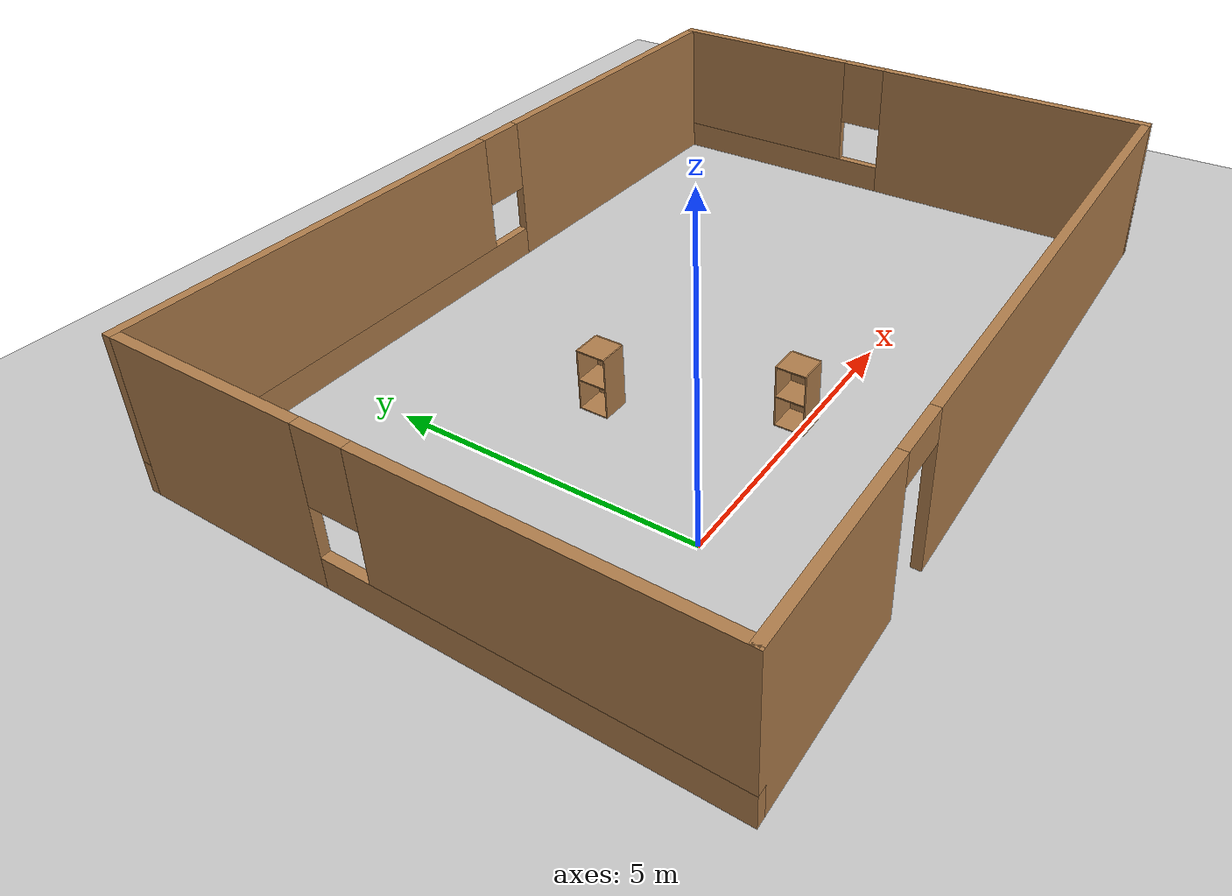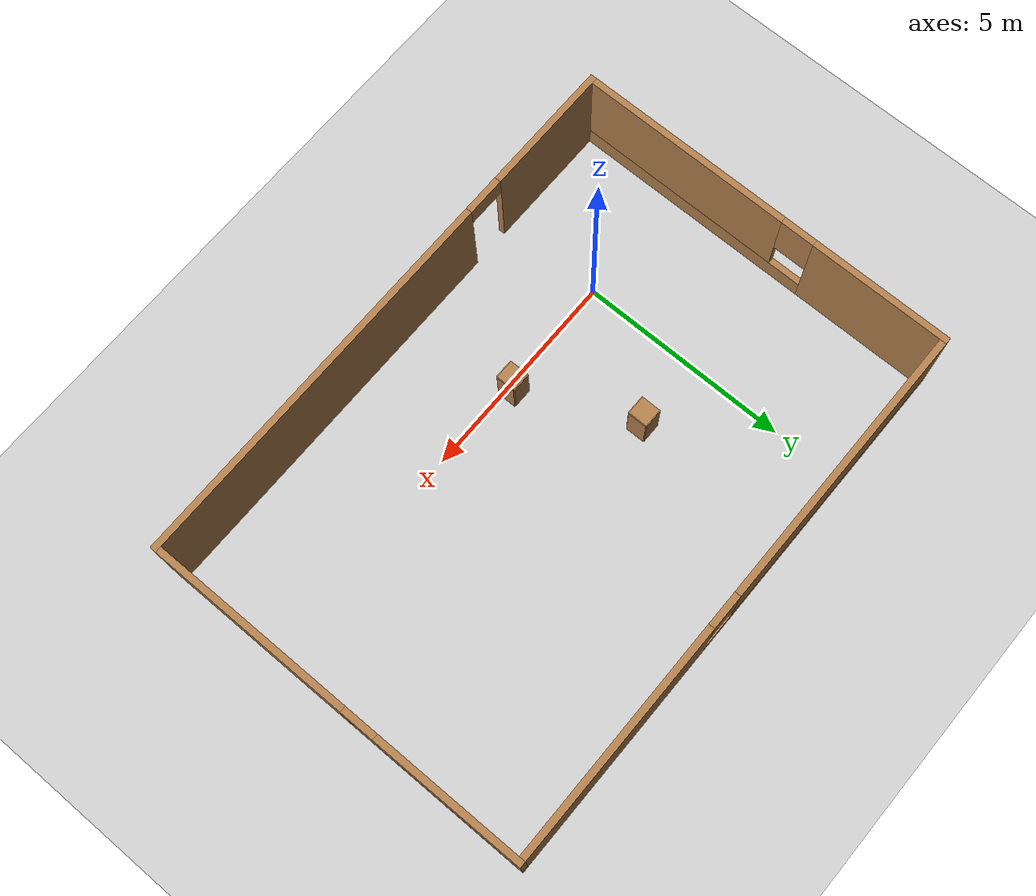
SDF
<sdf version="1.7">
 <world name="default">
  <light name="sun" type="directional">
   <pose>0 0 10 0 -0 0</pose>
   <diffuse>0.8 0.8 0.8 1</diffuse>
   <specular>0.2 0.2 0.2 1</specular>
   <attenuation>
    <range>1000</range>
    <constant>0.9</constant>
    <linear>0.01</linear>
    <quadratic>0.001</quadratic>
   </attenuation>
   <direction>-0.5 0.1 -0.9</direction>
   <spot><inner_angle>0</inner_angle><outer_angle>0</outer_angle><falloff>0</falloff></spot>
  </light>
  <model name="ground_plane">
   <static>1</static>
   <link name="link">
    <collision name="collision">
     <geometry><plane><normal>0 0 1</normal><size>100 100</size></plane></geometry>
     <surface>
      <contact><collide_bitmask>65535</collide_bitmask></contact>
      <friction><ode><mu>100</mu><mu2>50</mu2></ode></friction>
     </surface>
    </collision>
    <visual name="visual">
     <cast_shadows>0</cast_shadows>
     <geometry><plane><normal>0 0 1</normal><size>100 100</size></plane></geometry>
     <material>
      <script><uri>file://media/materials/scripts/gazebo.material</uri><name>Gazebo/Grey</name></script>
     </material>
    </visual>
   </link>
  </model>
  <gravity>0 0 -9.8</gravity>
  <magnetic_field>6e-06 2.3e-05 -4.2e-05</magnetic_field>
  <atmosphere type="adiabatic"/>
  <physics type="ode">
   <max_step_size>0.001</max_step_size>
   <real_time_factor>1</real_time_factor>
   <real_time_update_rate>1000</real_time_update_rate>
  </physics>
  <scene><ambient>0.4 0.4 0.4 1</ambient><background>0.7 0.7 0.7 1</background><shadows>1</shadows></scene>
  <spherical_coordinates>
   <surface_model>EARTH_WGS84</surface_model>
   <latitude_deg>0</latitude_deg>
   <longitude_deg>0</longitude_deg>
   <elevation>0</elevation>
   <heading_deg>0</heading_deg>
  </spherical_coordinates>
  <model name="talk_world">
   <pose>3.6865 2.09052 0 0 -0 0</pose>
   <link name="Wall_5">
    <pose>0 -4.55 0 0 -0 0</pose>
    <visual name="Wall_5_Visual_0">
     <pose>-5.07062 0 1.25 0 -0 0</pose>
     <geometry><box><size>3.10875 0.15 2.5</size></box></geometry>
     <material>
      <script><uri>file://media/materials/scripts/gazebo.material</uri><name>Gazebo/Wood</name></script>
      <ambient>1 1 1 1</ambient>
     </material>
     <meta><layer>0</layer></meta>
    </visual>
    <collision name="Wall_5_Collision_0">
     <geometry><box><size>3.10875 0.15 2.5</size></box></geometry>
     <pose>-5.07062 0 1.25 0 -0 0</pose>
    </collision>
    <visual name="Wall_5_Visual_1">
     <pose>2.00438 0 1.25 0 -0 0</pose>
     <geometry><box><size>9.24125 0.15 2.5</size></box></geometry>
     <material>
      <script><uri>file://media/materials/scripts/gazebo.material</uri><name>Gazebo/Wood</name></script>
      <ambient>1 1 1 1</ambient>
     </material>
     <meta><layer>0</layer></meta>
    </visual>
    <collision name="Wall_5_Collision_1">
     <geometry><box><size>9.24125 0.15 2.5</size></box></geometry>
     <pose>2.00438 0 1.25 0 -0 0</pose>
    </collision>
    <visual name="Wall_5_Visual_2">
     <pose>-3.06625 0 2.25 0 -0 0</pose>
     <geometry><box><size>0.9 0.15 0.5</size></box></geometry>
     <material>
      <script><uri>file://media/materials/scripts/gazebo.material</uri><name>Gazebo/Wood</name></script>
      <ambient>1 1 1 1</ambient>
     </material>
     <meta><layer>0</layer></meta>
    </visual>
    <collision name="Wall_5_Collision_2">
     <geometry><box><size>0.9 0.15 0.5</size></box></geometry>
     <pose>-3.06625 0 2.25 0 -0 0</pose>
    </collision>
   </link>
   <link name="Wall_6">
    <pose>6.55 0 0 0 -0 1.5708</pose>
    <visual name="Wall_6_Visual_0">
     <pose>-2.18307 0 1.25 0 -0 0</pose>
     <geometry><box><size>4.88386 0.15 2.5</size></box></geometry>
     <material>
      <script><uri>file://media/materials/scripts/gazebo.material</uri><name>Gazebo/Wood</name></script>
      <ambient>1 1 1 1</ambient>
     </material>
     <meta><layer>0</layer></meta>
    </visual>
    <collision name="Wall_6_Collision_0">
     <geometry><box><size>4.88386 0.15 2.5</size></box></geometry>
     <pose>-2.18307 0 1.25 0 -0 0</pose>
    </collision>
    <visual name="Wall_6_Visual_1">
     <pose>2.44193 0 0.25 0 -0 0</pose>
     <geometry><box><size>4.36614 0.15 0.5</size></box></geometry>
     <material>
      <script><uri>file://media/materials/scripts/gazebo.material</uri><name>Gazebo/Wood</name></script>
      <ambient>1 1 1 1</ambient>
     </material>
     <meta><layer>0</layer></meta>
    </visual>
    <collision name="Wall_6_Collision_1">
     <geometry><box><size>4.36614 0.15 0.5</size></box></geometry>
     <pose>2.44193 0 0.25 0 -0 0</pose>
    </collision>
    <visual name="Wall_6_Visual_2">
     <pose>2.84193 0 1.5 0 -0 0</pose>
     <geometry><box><size>3.56614 0.15 2</size></box></geometry>
     <material>
      <script><uri>file://media/materials/scripts/gazebo.material</uri><name>Gazebo/Wood</name></script>
      <ambient>1 1 1 1</ambient>
     </material>
     <meta><layer>0</layer></meta>
    </visual>
    <collision name="Wall_6_Collision_2">
     <geometry><box><size>3.56614 0.15 2</size></box></geometry>
     <pose>2.84193 0 1.5 0 -0 0</pose>
    </collision>
    <visual name="Wall_6_Visual_3">
     <pose>0.65886 0 1.9 0 -0 0</pose>
     <geometry><box><size>0.8 0.15 1.2</size></box></geometry>
     <material>
      <script><uri>file://media/materials/scripts/gazebo.material</uri><name>Gazebo/Wood</name></script>
      <ambient>1 1 1 1</ambient>
     </material>
     <meta><layer>0</layer></meta>
    </visual>
    <collision name="Wall_6_Collision_3">
     <geometry><box><size>0.8 0.15 1.2</size></box></geometry>
     <pose>0.65886 0 1.9 0 -0 0</pose>
    </collision>
   </link>
   <link name="Wall_7">
    <pose>0 4.55 0 0 -0 3.14159</pose>
    <visual name="Wall_7_Visual_0">
     <pose>-3.79108 0 1.25 0 -0 0</pose>
     <geometry><box><size>5.66783 0.15 2.5</size></box></geometry>
     <material>
      <script><uri>file://media/materials/scripts/gazebo.material</uri><name>Gazebo/Wood</name></script>
      <ambient>1 1 1 1</ambient>
     </material>
     <meta><layer>0</layer></meta>
    </visual>
    <collision name="Wall_7_Collision_0">
     <geometry><box><size>5.66783 0.15 2.5</size></box></geometry>
     <pose>-3.79108 0 1.25 0 -0 0</pose>
    </collision>
    <visual name="Wall_7_Visual_1">
     <pose>2.83392 0 0.25 0 -0 0</pose>
     <geometry><box><size>7.58217 0.15 0.5</size></box></geometry>
     <material>
      <script><uri>file://media/materials/scripts/gazebo.material</uri><name>Gazebo/Wood</name></script>
      <ambient>1 1 1 1</ambient>
     </material>
     <meta><layer>0</layer></meta>
    </visual>
    <collision name="Wall_7_Collision_1">
     <geometry><box><size>7.58217 0.15 0.5</size></box></geometry>
     <pose>2.83392 0 0.25 0 -0 0</pose>
    </collision>
    <visual name="Wall_7_Visual_2">
     <pose>3.23392 0 1.5 0 -0 0</pose>
     <geometry><box><size>6.78217 0.15 2</size></box></geometry>
     <material>
      <script><uri>file://media/materials/scripts/gazebo.material</uri><name>Gazebo/Wood</name></script>
      <ambient>1 1 1 1</ambient>
     </material>
     <meta><layer>0</layer></meta>
    </visual>
    <collision name="Wall_7_Collision_2">
     <geometry><box><size>6.78217 0.15 2</size></box></geometry>
     <pose>3.23392 0 1.5 0 -0 0</pose>
    </collision>
    <visual name="Wall_7_Visual_3">
     <pose>-0.557166 0 1.9 0 -0 0</pose>
     <geometry><box><size>0.8 0.15 1.2</size></box></geometry>
     <material>
      <script><uri>file://media/materials/scripts/gazebo.material</uri><name>Gazebo/Wood</name></script>
      <ambient>1 1 1 1</ambient>
     </material>
     <meta><layer>0</layer></meta>
    </visual>
    <collision name="Wall_7_Collision_3">
     <geometry><box><size>0.8 0.15 1.2</size></box></geometry>
     <pose>-0.557166 0 1.9 0 -0 0</pose>
    </collision>
   </link>
   <link name="Wall_8">
    <pose>-6.55 0 0 0 -0 -1.5708</pose>
    <visual name="Wall_8_Visual_0">
     <pose>-2.96505 0 1.25 0 -0 0</pose>
     <geometry><box><size>3.31989 0.15 2.5</size></box></geometry>
     <material>
      <script><uri>file://media/materials/scripts/gazebo.material</uri><name>Gazebo/Wood</name></script>
      <ambient>1 1 1 1</ambient>
     </material>
     <meta><layer>0</layer></meta>
    </visual>
    <collision name="Wall_8_Collision_0">
     <geometry><box><size>3.31989 0.15 2.5</size></box></geometry>
     <pose>-2.96505 0 1.25 0 -0 0</pose>
    </collision>
    <visual name="Wall_8_Visual_1">
     <pose>1.65995 0 0.25 0 -0 0</pose>
     <geometry><box><size>5.93011 0.15 0.5</size></box></geometry>
     <material>
      <script><uri>file://media/materials/scripts/gazebo.material</uri><name>Gazebo/Wood</name></script>
      <ambient>1 1 1 1</ambient>
     </material>
     <meta><layer>0</layer></meta>
    </visual>
    <collision name="Wall_8_Collision_1">
     <geometry><box><size>5.93011 0.15 0.5</size></box></geometry>
     <pose>1.65995 0 0.25 0 -0 0</pose>
    </collision>
    <visual name="Wall_8_Visual_2">
     <pose>2.05994 0 1.5 0 -0 0</pose>
     <geometry><box><size>5.13011 0.15 2</size></box></geometry>
     <material>
      <script><uri>file://media/materials/scripts/gazebo.material</uri><name>Gazebo/Wood</name></script>
      <ambient>1 1 1 1</ambient>
     </material>
     <meta><layer>0</layer></meta>
    </visual>
    <collision name="Wall_8_Collision_2">
     <geometry><box><size>5.13011 0.15 2</size></box></geometry>
     <pose>2.05994 0 1.5 0 -0 0</pose>
    </collision>
    <visual name="Wall_8_Visual_3">
     <pose>-0.905111 0 1.9 0 -0 0</pose>
     <geometry><box><size>0.8 0.15 1.2</size></box></geometry>
     <material>
      <script><uri>file://media/materials/scripts/gazebo.material</uri><name>Gazebo/Wood</name></script>
      <ambient>1 1 1 1</ambient>
     </material>
     <meta><layer>0</layer></meta>
    </visual>
    <collision name="Wall_8_Collision_3">
     <geometry><box><size>0.8 0.15 1.2</size></box></geometry>
     <pose>-0.905111 0 1.9 0 -0 0</pose>
    </collision>
   </link>
   <static>1</static>
  </model>
  <model name="cabinet">
   <static>1</static>
   <link name="cabinet_bottom_plate">
    <inertial>
     <pose>0 0 -1 0 -0 0</pose>
     <inertia><ixx>2.05</ixx><ixy>0</ixy><ixz>0</ixz><iyy>2.05</iyy><iyz>0</iyz><izz>2.05</izz></inertia>
     <mass>25</mass>
    </inertial>
    <collision name="cabinet_bottom_plate_geom">
     <pose>0 0 0.01 0 -0 0</pose>
     <geometry><box><size>0.45 0.45 0.02</size></box></geometry>
    </collision>
    <visual name="cabinet_bottom_plate_geom_visual">
     <pose>0 0 0.01 0 -0 0</pose>
     <geometry><box><size>0.45 0.45 0.02</size></box></geometry>
     <material>
      <script><uri>file://media/materials/scripts/gazebo.material</uri><name>Gazebo/Wood</name></script>
     </material>
    </visual>
    <collision name="cabinet_bottom_plate_geom_cabinet_back_plate">
     <pose>0.235 0 0.51 0 -0 0</pose>
     <geometry><box><size>0.02 0.45 1.02</size></box></geometry>
    </collision>
    <visual name="cabinet_bottom_plate_geom_cabinet_back_plate_visual">
     <pose>0.235 0 0.51 0 -0 0</pose>
     <geometry><box><size>0.02 0.45 1.02</size></box></geometry>
     <material>
      <script><uri>file://media/materials/scripts/gazebo.material</uri><name>Gazebo/Wood</name></script>
     </material>
    </visual>
    <collision name="cabinet_bottom_plate_geom_cabinet_left_plate">
     <pose>0 0.235 0.51 0 -0 0</pose>
     <geometry><box><size>0.45 0.02 1.02</size></box></geometry>
    </collision>
    <visual name="cabinet_bottom_plate_geom_cabinet_left_plate_visual">
     <pose>0 0.235 0.51 0 -0 0</pose>
     <geometry><box><size>0.45 0.02 1.02</size></box></geometry>
     <material>
      <script><uri>file://media/materials/scripts/gazebo.material</uri><name>Gazebo/Wood</name></script>
     </material>
    </visual>
    <collision name="cabinet_bottom_plate_geom_cabinet_middle_plate">
     <pose>0 0 0.51 0 -0 0</pose>
     <geometry><box><size>0.45 0.45 0.02</size></box></geometry>
    </collision>
    <visual name="cabinet_bottom_plate_geom_cabinet_middle_plate_visual">
     <pose>0 0 0.51 0 -0 0</pose>
     <geometry><box><size>0.45 0.45 0.02</size></box></geometry>
     <material>
      <script><uri>file://media/materials/scripts/gazebo.material</uri><name>Gazebo/Wood</name></script>
     </material>
    </visual>
    <collision name="cabinet_bottom_plate_geom_cabinet_right_plate">
     <pose>0 -0.235 0.51 0 -0 0</pose>
     <geometry><box><size>0.45 0.02 1.02</size></box></geometry>
    </collision>
    <visual name="cabinet_bottom_plate_geom_cabinet_right_plate_visual">
     <pose>0 -0.235 0.51 0 -0 0</pose>
     <geometry><box><size>0.45 0.02 1.02</size></box></geometry>
     <material>
      <script><uri>file://media/materials/scripts/gazebo.material</uri><name>Gazebo/Wood</name></script>
     </material>
    </visual>
    <collision name="cabinet_bottom_plate_geom_cabinet_top_plate">
     <pose>0 0 1.01 0 -0 0</pose>
     <geometry><box><size>0.45 0.45 0.02</size></box></geometry>
    </collision>
    <visual name="cabinet_bottom_plate_geom_cabinet_top_plate_visual">
     <pose>0 0 1.01 0 -0 0</pose>
     <geometry><box><size>0.45 0.45 0.02</size></box></geometry>
     <material>
      <script><uri>file://media/materials/scripts/gazebo.material</uri><name>Gazebo/Wood</name></script>
     </material>
    </visual>
   </link>
   <pose>2.84682 0.154954 0 0 -0 0</pose>
  </model>
  <model name="cabinet_0">
   <static>1</static>
   <link name="cabinet_bottom_plate">
    <inertial>
     <pose>0 0 -1 0 -0 0</pose>
     <inertia><ixx>2.05</ixx><ixy>0</ixy><ixz>0</ixz><iyy>2.05</iyy><iyz>0</iyz><izz>2.05</izz></inertia>
     <mass>25</mass>
    </inertial>
    <collision name="cabinet_bottom_plate_geom">
     <pose>0 0 0.01 0 -0 0</pose>
     <geometry><box><size>0.45 0.45 0.02</size></box></geometry>
    </collision>
    <visual name="cabinet_bottom_plate_geom_visual">
     <pose>0 0 0.01 0 -0 0</pose>
     <geometry><box><size>0.45 0.45 0.02</size></box></geometry>
     <material>
      <script><uri>file://media/materials/scripts/gazebo.material</uri><name>Gazebo/Wood</name></script>
     </material>
    </visual>
    <collision name="cabinet_bottom_plate_geom_cabinet_back_plate">
     <pose>0.235 0 0.51 0 -0 0</pose>
     <geometry><box><size>0.02 0.45 1.02</size></box></geometry>
    </collision>
    <visual name="cabinet_bottom_plate_geom_cabinet_back_plate_visual">
     <pose>0.235 0 0.51 0 -0 0</pose>
     <geometry><box><size>0.02 0.45 1.02</size></box></geometry>
     <material>
      <script><uri>file://media/materials/scripts/gazebo.material</uri><name>Gazebo/Wood</name></script>
     </material>
    </visual>
    <collision name="cabinet_bottom_plate_geom_cabinet_left_plate">
     <pose>0 0.235 0.51 0 -0 0</pose>
     <geometry><box><size>0.45 0.02 1.02</size></box></geometry>
    </collision>
    <visual name="cabinet_bottom_plate_geom_cabinet_left_plate_visual">
     <pose>0 0.235 0.51 0 -0 0</pose>
     <geometry><box><size>0.45 0.02 1.02</size></box></geometry>
     <material>
      <script><uri>file://media/materials/scripts/gazebo.material</uri><name>Gazebo/Wood</name></script>
     </material>
    </visual>
    <collision name="cabinet_bottom_plate_geom_cabinet_middle_plate">
     <pose>0 0 0.51 0 -0 0</pose>
     <geometry><box><size>0.45 0.45 0.02</size></box></geometry>
    </collision>
    <visual name="cabinet_bottom_plate_geom_cabinet_middle_plate_visual">
     <pose>0 0 0.51 0 -0 0</pose>
     <geometry><box><size>0.45 0.45 0.02</size></box></geometry>
     <material>
      <script><uri>file://media/materials/scripts/gazebo.material</uri><name>Gazebo/Wood</name></script>
     </material>
    </visual>
    <collision name="cabinet_bottom_plate_geom_cabinet_right_plate">
     <pose>0 -0.235 0.51 0 -0 0</pose>
     <geometry><box><size>0.45 0.02 1.02</size></box></geometry>
    </collision>
    <visual name="cabinet_bottom_plate_geom_cabinet_right_plate_visual">
     <pose>0 -0.235 0.51 0 -0 0</pose>
     <geometry><box><size>0.45 0.02 1.02</size></box></geometry>
     <material>
      <script><uri>file://media/materials/scripts/gazebo.material</uri><name>Gazebo/Wood</name></script>
     </material>
    </visual>
    <collision name="cabinet_bottom_plate_geom_cabinet_top_plate">
     <pose>0 0 1.01 0 -0 0</pose>
     <geometry><box><size>0.45 0.45 0.02</size></box></geometry>
    </collision>
    <visual name="cabinet_bottom_plate_geom_cabinet_top_plate_visual">
     <pose>0 0 1.01 0 -0 0</pose>
     <geometry><box><size>0.45 0.45 0.02</size></box></geometry>
     <material>
      <script><uri>file://media/materials/scripts/gazebo.material</uri><name>Gazebo/Wood</name></script>
     </material>
    </visual>
   </link>
   <pose>1.70705 2.7475 0 0 -0 0</pose>
  </model>
  <light name="user_point_light_0" type="point">
   <pose>3.50067 2.00898 1 0 -0 0</pose>
   <diffuse>0.5 0.5 0.5 1</diffuse>
   <specular>0.1 0.1 0.1 1</specular>
   <attenuation>
    <range>20</range>
    <constant>0.5</constant>
    <linear>0.01</linear>
    <quadratic>0.001</quadratic>
   </attenuation>
   <cast_shadows>0</cast_shadows>
   <direction>0 0 -1</direction>
  </light>
 </world>
</sdf>
